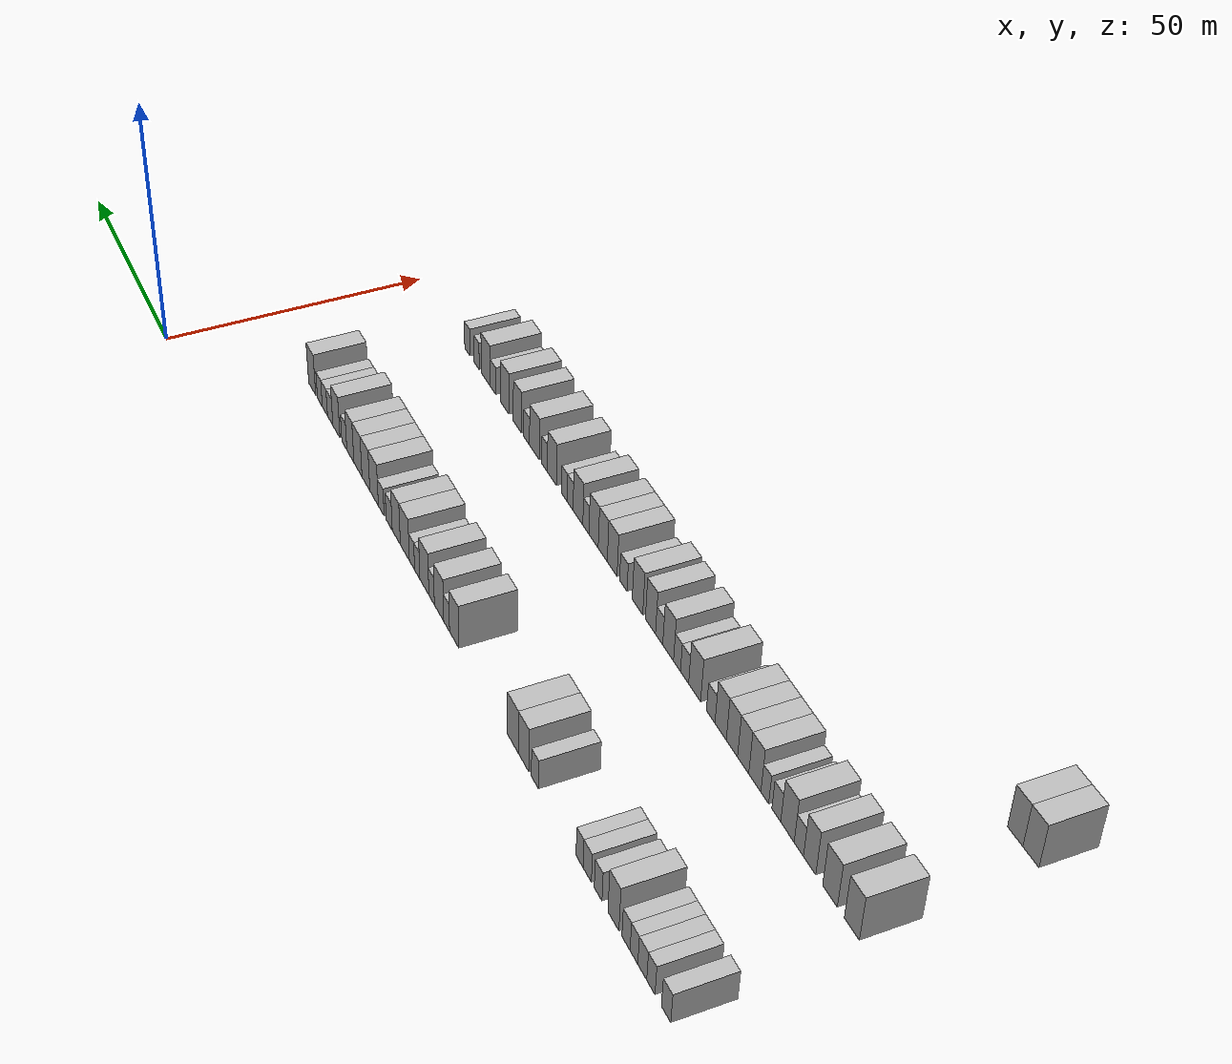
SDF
<sdf version="1.6">
 <world name="default">
  <model name="building_77">
   <static>1</static>
   <pose>25.0000 -171.9462 0 0.000000 0.000000 0.000000</pose>
   <link name="link">
    <pose>0 0 3.00 0 0 0</pose>
    <collision name="collision"><geometry><box><size>10.0000 2.8960 6.0000</size></box></geometry></collision>
    <visual name="visual">
     <cast_shadows>0</cast_shadows>
     <geometry><box><size>10.0000 2.8960 6.0000</size></box></geometry>
     <material>
      <script>
       <uri>model://HANNAS_wall/materials/scripts</uri>
       <uri>model://HANNAS_wall/materials/textures</uri>
       <name>vrc/HANNAS_wall</name>
      </script>
     </material>
    </visual>
   </link>
  </model>
  <model name="building_78">
   <static>1</static>
   <pose>25.0000 -167.1948 0 0.000000 0.000000 0.000000</pose>
   <link name="link">
    <pose>0 0 3.00 0 0 0</pose>
    <collision name="collision"><geometry><box><size>10.0000 2.6068 6.0000</size></box></geometry></collision>
    <visual name="visual">
     <cast_shadows>0</cast_shadows>
     <geometry><box><size>10.0000 2.6068 6.0000</size></box></geometry>
     <material>
      <script>
       <uri>model://HANNAS_wall/materials/scripts</uri>
       <uri>model://HANNAS_wall/materials/textures</uri>
       <name>vrc/HANNAS_wall</name>
      </script>
     </material>
    </visual>
   </link>
  </model>
  <model name="building_79">
   <static>1</static>
   <pose>25.0000 -164.4544 0 0.000000 0.000000 0.000000</pose>
   <link name="link">
    <pose>0 0 3.00 0 0 0</pose>
    <collision name="collision"><geometry><box><size>10.0000 2.8740 6.0000</size></box></geometry></collision>
    <visual name="visual">
     <cast_shadows>0</cast_shadows>
     <geometry><box><size>10.0000 2.8740 6.0000</size></box></geometry>
     <material>
      <script>
       <uri>model://HANNAS_wall/materials/scripts</uri>
       <uri>model://HANNAS_wall/materials/textures</uri>
       <name>vrc/HANNAS_wall</name>
      </script>
     </material>
    </visual>
   </link>
  </model>
  <model name="building_80">
   <static>1</static>
   <pose>25.0000 -161.7639 0 0.000000 0.000000 0.000000</pose>
   <link name="link">
    <pose>0 0 3.00 0 0 0</pose>
    <collision name="collision"><geometry><box><size>10.0000 2.5069 6.0000</size></box></geometry></collision>
    <visual name="visual">
     <cast_shadows>0</cast_shadows>
     <geometry><box><size>10.0000 2.5069 6.0000</size></box></geometry>
     <material>
      <script>
       <uri>model://HANNAS_wall/materials/scripts</uri>
       <uri>model://HANNAS_wall/materials/textures</uri>
       <name>vrc/HANNAS_wall</name>
      </script>
     </material>
    </visual>
   </link>
  </model>
  <model name="building_81">
   <static>1</static>
   <pose>25.0000 -159.1774 0 0.000000 0.000000 0.000000</pose>
   <link name="link">
    <pose>0 0 3.00 0 0 0</pose>
    <collision name="collision"><geometry><box><size>10.0000 2.6662 6.0000</size></box></geometry></collision>
    <visual name="visual">
     <cast_shadows>0</cast_shadows>
     <geometry><box><size>10.0000 2.6662 6.0000</size></box></geometry>
     <material>
      <script>
       <uri>model://HANNAS_wall/materials/scripts</uri>
       <uri>model://HANNAS_wall/materials/textures</uri>
       <name>vrc/HANNAS_wall</name>
      </script>
     </material>
    </visual>
   </link>
  </model>
  <model name="building_82">
   <static>1</static>
   <pose>25.0000 -155.0126 0 0.000000 0.000000 0.000000</pose>
   <link name="link">
    <pose>0 0 4.50 0 0 0</pose>
    <collision name="collision"><geometry><box><size>10.0000 3.6634 9.0000</size></box></geometry></collision>
    <visual name="visual">
     <cast_shadows>0</cast_shadows>
     <geometry><box><size>10.0000 3.6634 9.0000</size></box></geometry>
     <material>
      <script>
       <uri>model://HANNAS_wall/materials/scripts</uri>
       <uri>model://HANNAS_wall/materials/textures</uri>
       <name>vrc/HANNAS_wall</name>
      </script>
     </material>
    </visual>
   </link>
  </model>
  <model name="building_83">
   <static>1</static>
   <pose>25.0000 -149.8587 0 0.000000 0.000000 0.000000</pose>
   <link name="link">
    <pose>0 0 3.00 0 0 0</pose>
    <collision name="collision"><geometry><box><size>10.0000 2.6444 6.0000</size></box></geometry></collision>
    <visual name="visual">
     <cast_shadows>0</cast_shadows>
     <geometry><box><size>10.0000 2.6444 6.0000</size></box></geometry>
     <material>
      <script>
       <uri>model://HANNAS_wall/materials/scripts</uri>
       <uri>model://HANNAS_wall/materials/textures</uri>
       <name>vrc/HANNAS_wall</name>
      </script>
     </material>
    </visual>
   </link>
  </model>
  <model name="building_84">
   <static>1</static>
   <pose>25.0000 -146.0959 0 0.000000 0.000000 0.000000</pose>
   <link name="link">
    <pose>0 0 3.00 0 0 0</pose>
    <collision name="collision"><geometry><box><size>10.0000 2.8811 6.0000</size></box></geometry></collision>
    <visual name="visual">
     <cast_shadows>0</cast_shadows>
     <geometry><box><size>10.0000 2.8811 6.0000</size></box></geometry>
     <material>
      <script>
       <uri>model://HANNAS_wall/materials/scripts</uri>
       <uri>model://HANNAS_wall/materials/textures</uri>
       <name>vrc/HANNAS_wall</name>
      </script>
     </material>
    </visual>
   </link>
  </model>
  <model name="building_85">
   <static>1</static>
   <pose>25.0000 -143.4187 0 0.000000 0.000000 0.000000</pose>
   <link name="link">
    <pose>0 0 3.00 0 0 0</pose>
    <collision name="collision"><geometry><box><size>10.0000 2.4735 6.0000</size></box></geometry></collision>
    <visual name="visual">
     <cast_shadows>0</cast_shadows>
     <geometry><box><size>10.0000 2.4735 6.0000</size></box></geometry>
     <material>
      <script>
       <uri>model://HANNAS_wall/materials/scripts</uri>
       <uri>model://HANNAS_wall/materials/textures</uri>
       <name>vrc/HANNAS_wall</name>
      </script>
     </material>
    </visual>
   </link>
  </model>
  <model name="building_86">
   <static>1</static>
   <pose>25.0000 -127.1393 0 0.000000 0.000000 0.000000</pose>
   <link name="link">
    <pose>0 0 3.00 0 0 0</pose>
    <collision name="collision"><geometry><box><size>10.0000 2.6951 6.0000</size></box></geometry></collision>
    <visual name="visual">
     <cast_shadows>0</cast_shadows>
     <geometry><box><size>10.0000 2.6951 6.0000</size></box></geometry>
     <material>
      <script>
       <uri>model://HANNAS_wall/materials/scripts</uri>
       <uri>model://HANNAS_wall/materials/textures</uri>
       <name>vrc/HANNAS_wall</name>
      </script>
     </material>
    </visual>
   </link>
  </model>
  <model name="building_87">
   <static>1</static>
   <pose>25.0000 -122.7769 0 0.000000 0.000000 0.000000</pose>
   <link name="link">
    <pose>0 0 4.50 0 0 0</pose>
    <collision name="collision"><geometry><box><size>10.0000 4.0297 9.0000</size></box></geometry></collision>
    <visual name="visual">
     <cast_shadows>0</cast_shadows>
     <geometry><box><size>10.0000 4.0297 9.0000</size></box></geometry>
     <material>
      <script>
       <uri>model://HANNAS_wall/materials/scripts</uri>
       <uri>model://HANNAS_wall/materials/textures</uri>
       <name>vrc/HANNAS_wall</name>
      </script>
     </material>
    </visual>
   </link>
  </model>
  <model name="building_88">
   <static>1</static>
   <pose>25.0000 -118.6511 0 0.000000 0.000000 0.000000</pose>
   <link name="link">
    <pose>0 0 4.50 0 0 0</pose>
    <collision name="collision"><geometry><box><size>10.0000 4.2219 9.0000</size></box></geometry></collision>
    <visual name="visual">
     <cast_shadows>0</cast_shadows>
     <geometry><box><size>10.0000 4.2219 9.0000</size></box></geometry>
     <material>
      <script>
       <uri>model://HANNAS_wall/materials/scripts</uri>
       <uri>model://HANNAS_wall/materials/textures</uri>
       <name>vrc/HANNAS_wall</name>
      </script>
     </material>
    </visual>
   </link>
  </model>
  <model name="building_89">
   <static>1</static>
   <pose>25.0000 -94.5242 0 0.000000 0.000000 0.000000</pose>
   <link name="link">
    <pose>0 0 4.50 0 0 0</pose>
    <collision name="collision"><geometry><box><size>10.0000 4.0106 9.0000</size></box></geometry></collision>
    <visual name="visual">
     <cast_shadows>0</cast_shadows>
     <geometry><box><size>10.0000 4.0106 9.0000</size></box></geometry>
     <material>
      <script>
       <uri>model://HANNAS_wall/materials/scripts</uri>
       <uri>model://HANNAS_wall/materials/textures</uri>
       <name>vrc/HANNAS_wall</name>
      </script>
     </material>
    </visual>
   </link>
  </model>
  <model name="building_90">
   <static>1</static>
   <pose>25.0000 -91.2445 0 0.000000 0.000000 0.000000</pose>
   <link name="link">
    <pose>0 0 3.00 0 0 0</pose>
    <collision name="collision"><geometry><box><size>10.0000 2.5489 6.0000</size></box></geometry></collision>
    <visual name="visual">
     <cast_shadows>0</cast_shadows>
     <geometry><box><size>10.0000 2.5489 6.0000</size></box></geometry>
     <material>
      <script>
       <uri>model://HANNAS_wall/materials/scripts</uri>
       <uri>model://HANNAS_wall/materials/textures</uri>
       <name>vrc/HANNAS_wall</name>
      </script>
     </material>
    </visual>
   </link>
  </model>
  <model name="building_91">
   <static>1</static>
   <pose>25.0000 -87.8965 0 0.000000 0.000000 0.000000</pose>
   <link name="link">
    <pose>0 0 4.50 0 0 0</pose>
    <collision name="collision"><geometry><box><size>10.0000 4.1472 9.0000</size></box></geometry></collision>
    <visual name="visual">
     <cast_shadows>0</cast_shadows>
     <geometry><box><size>10.0000 4.1472 9.0000</size></box></geometry>
     <material>
      <script>
       <uri>model://HANNAS_wall/materials/scripts</uri>
       <uri>model://HANNAS_wall/materials/textures</uri>
       <name>vrc/HANNAS_wall</name>
      </script>
     </material>
    </visual>
   </link>
  </model>
  <model name="building_92">
   <static>1</static>
   <pose>25.0000 -84.5938 0 0.000000 0.000000 0.000000</pose>
   <link name="link">
    <pose>0 0 3.00 0 0 0</pose>
    <collision name="collision"><geometry><box><size>10.0000 2.4582 6.0000</size></box></geometry></collision>
    <visual name="visual">
     <cast_shadows>0</cast_shadows>
     <geometry><box><size>10.0000 2.4582 6.0000</size></box></geometry>
     <material>
      <script>
       <uri>model://HANNAS_wall/materials/scripts</uri>
       <uri>model://HANNAS_wall/materials/textures</uri>
       <name>vrc/HANNAS_wall</name>
      </script>
     </material>
    </visual>
   </link>
  </model>
  <model name="building_93">
   <static>1</static>
   <pose>25.0000 -81.3081 0 0.000000 0.000000 0.000000</pose>
   <link name="link">
    <pose>0 0 4.50 0 0 0</pose>
    <collision name="collision"><geometry><box><size>10.0000 4.1131 9.0000</size></box></geometry></collision>
    <visual name="visual">
     <cast_shadows>0</cast_shadows>
     <geometry><box><size>10.0000 4.1131 9.0000</size></box></geometry>
     <material>
      <script>
       <uri>model://HANNAS_wall/materials/scripts</uri>
       <uri>model://HANNAS_wall/materials/textures</uri>
       <name>vrc/HANNAS_wall</name>
      </script>
     </material>
    </visual>
   </link>
  </model>
  <model name="building_94">
   <static>1</static>
   <pose>25.0000 -78.0422 0 0.000000 0.000000 0.000000</pose>
   <link name="link">
    <pose>0 0 3.00 0 0 0</pose>
    <collision name="collision"><geometry><box><size>10.0000 2.4187 6.0000</size></box></geometry></collision>
    <visual name="visual">
     <cast_shadows>0</cast_shadows>
     <geometry><box><size>10.0000 2.4187 6.0000</size></box></geometry>
     <material>
      <script>
       <uri>model://HANNAS_wall/materials/scripts</uri>
       <uri>model://HANNAS_wall/materials/textures</uri>
       <name>vrc/HANNAS_wall</name>
      </script>
     </material>
    </visual>
   </link>
  </model>
  <model name="building_95">
   <static>1</static>
   <pose>25.0000 -75.6158 0 0.000000 0.000000 0.000000</pose>
   <link name="link">
    <pose>0 0 3.00 0 0 0</pose>
    <collision name="collision"><geometry><box><size>10.0000 2.4341 6.0000</size></box></geometry></collision>
    <visual name="visual">
     <cast_shadows>0</cast_shadows>
     <geometry><box><size>10.0000 2.4341 6.0000</size></box></geometry>
     <material>
      <script>
       <uri>model://HANNAS_wall/materials/scripts</uri>
       <uri>model://HANNAS_wall/materials/textures</uri>
       <name>vrc/HANNAS_wall</name>
      </script>
     </material>
    </visual>
   </link>
  </model>
  <model name="building_96">
   <static>1</static>
   <pose>25.0000 -72.2609 0 0.000000 0.000000 0.000000</pose>
   <link name="link">
    <pose>0 0 4.50 0 0 0</pose>
    <collision name="collision"><geometry><box><size>10.0000 4.2758 9.0000</size></box></geometry></collision>
    <visual name="visual">
     <cast_shadows>0</cast_shadows>
     <geometry><box><size>10.0000 4.2758 9.0000</size></box></geometry>
     <material>
      <script>
       <uri>model://HANNAS_wall/materials/scripts</uri>
       <uri>model://HANNAS_wall/materials/textures</uri>
       <name>vrc/HANNAS_wall</name>
      </script>
     </material>
    </visual>
   </link>
  </model>
  <model name="building_97">
   <static>1</static>
   <pose>25.0000 -68.1911 0 0.000000 0.000000 0.000000</pose>
   <link name="link">
    <pose>0 0 4.50 0 0 0</pose>
    <collision name="collision"><geometry><box><size>10.0000 3.8638 9.0000</size></box></geometry></collision>
    <visual name="visual">
     <cast_shadows>0</cast_shadows>
     <geometry><box><size>10.0000 3.8638 9.0000</size></box></geometry>
     <material>
      <script>
       <uri>model://HANNAS_wall/materials/scripts</uri>
       <uri>model://HANNAS_wall/materials/textures</uri>
       <name>vrc/HANNAS_wall</name>
      </script>
     </material>
    </visual>
   </link>
  </model>
  <model name="building_98">
   <static>1</static>
   <pose>25.0000 -64.7932 0 0.000000 0.000000 0.000000</pose>
   <link name="link">
    <pose>0 0 3.00 0 0 0</pose>
    <collision name="collision"><geometry><box><size>10.0000 2.9321 6.0000</size></box></geometry></collision>
    <visual name="visual">
     <cast_shadows>0</cast_shadows>
     <geometry><box><size>10.0000 2.9321 6.0000</size></box></geometry>
     <material>
      <script>
       <uri>model://HANNAS_wall/materials/scripts</uri>
       <uri>model://HANNAS_wall/materials/textures</uri>
       <name>vrc/HANNAS_wall</name>
      </script>
     </material>
    </visual>
   </link>
  </model>
  <model name="building_99">
   <static>1</static>
   <pose>25.0000 -60.9051 0 0.000000 0.000000 0.000000</pose>
   <link name="link">
    <pose>0 0 3.00 0 0 0</pose>
    <collision name="collision"><geometry><box><size>10.0000 2.8439 6.0000</size></box></geometry></collision>
    <visual name="visual">
     <cast_shadows>0</cast_shadows>
     <geometry><box><size>10.0000 2.8439 6.0000</size></box></geometry>
     <material>
      <script>
       <uri>model://HANNAS_wall/materials/scripts</uri>
       <uri>model://HANNAS_wall/materials/textures</uri>
       <name>vrc/HANNAS_wall</name>
      </script>
     </material>
    </visual>
   </link>
  </model>
  <model name="building_100">
   <static>1</static>
   <pose>25.0000 -57.3632 0 0.000000 0.000000 0.000000</pose>
   <link name="link">
    <pose>0 0 4.50 0 0 0</pose>
    <collision name="collision"><geometry><box><size>10.0000 4.2399 9.0000</size></box></geometry></collision>
    <visual name="visual">
     <cast_shadows>0</cast_shadows>
     <geometry><box><size>10.0000 4.2399 9.0000</size></box></geometry>
     <material>
      <script>
       <uri>model://HANNAS_wall/materials/scripts</uri>
       <uri>model://HANNAS_wall/materials/textures</uri>
       <name>vrc/HANNAS_wall</name>
      </script>
     </material>
    </visual>
   </link>
  </model>
  <model name="building_101">
   <static>1</static>
   <pose>25.0000 -53.2477 0 0.000000 0.000000 0.000000</pose>
   <link name="link">
    <pose>0 0 4.50 0 0 0</pose>
    <collision name="collision"><geometry><box><size>10.0000 3.9911 9.0000</size></box></geometry></collision>
    <visual name="visual">
     <cast_shadows>0</cast_shadows>
     <geometry><box><size>10.0000 3.9911 9.0000</size></box></geometry>
     <material>
      <script>
       <uri>model://HANNAS_wall/materials/scripts</uri>
       <uri>model://HANNAS_wall/materials/textures</uri>
       <name>vrc/HANNAS_wall</name>
      </script>
     </material>
    </visual>
   </link>
  </model>
  <model name="building_102">
   <static>1</static>
   <pose>25.0000 -49.1932 0 0.000000 0.000000 0.000000</pose>
   <link name="link">
    <pose>0 0 4.50 0 0 0</pose>
    <collision name="collision"><geometry><box><size>10.0000 4.1179 9.0000</size></box></geometry></collision>
    <visual name="visual">
     <cast_shadows>0</cast_shadows>
     <geometry><box><size>10.0000 4.1179 9.0000</size></box></geometry>
     <material>
      <script>
       <uri>model://HANNAS_wall/materials/scripts</uri>
       <uri>model://HANNAS_wall/materials/textures</uri>
       <name>vrc/HANNAS_wall</name>
      </script>
     </material>
    </visual>
   </link>
  </model>
  <model name="building_103">
   <static>1</static>
   <pose>25.0000 -45.2762 0 0.000000 0.000000 0.000000</pose>
   <link name="link">
    <pose>0 0 4.50 0 0 0</pose>
    <collision name="collision"><geometry><box><size>10.0000 3.7161 9.0000</size></box></geometry></collision>
    <visual name="visual">
     <cast_shadows>0</cast_shadows>
     <geometry><box><size>10.0000 3.7161 9.0000</size></box></geometry>
     <material>
      <script>
       <uri>model://HANNAS_wall/materials/scripts</uri>
       <uri>model://HANNAS_wall/materials/textures</uri>
       <name>vrc/HANNAS_wall</name>
      </script>
     </material>
    </visual>
   </link>
  </model>
  <model name="building_104">
   <static>1</static>
   <pose>25.0000 -42.0873 0 0.000000 0.000000 0.000000</pose>
   <link name="link">
    <pose>0 0 3.00 0 0 0</pose>
    <collision name="collision"><geometry><box><size>10.0000 2.6617 6.0000</size></box></geometry></collision>
    <visual name="visual">
     <cast_shadows>0</cast_shadows>
     <geometry><box><size>10.0000 2.6617 6.0000</size></box></geometry>
     <material>
      <script>
       <uri>model://HANNAS_wall/materials/scripts</uri>
       <uri>model://HANNAS_wall/materials/textures</uri>
       <name>vrc/HANNAS_wall</name>
      </script>
     </material>
    </visual>
   </link>
  </model>
  <model name="building_105">
   <static>1</static>
   <pose>25.0000 -37.8781 0 0.000000 0.000000 0.000000</pose>
   <link name="link">
    <pose>0 0 4.50 0 0 0</pose>
    <collision name="collision"><geometry><box><size>10.0000 3.7567 9.0000</size></box></geometry></collision>
    <visual name="visual">
     <cast_shadows>0</cast_shadows>
     <geometry><box><size>10.0000 3.7567 9.0000</size></box></geometry>
     <material>
      <script>
       <uri>model://HANNAS_wall/materials/scripts</uri>
       <uri>model://HANNAS_wall/materials/textures</uri>
       <name>vrc/HANNAS_wall</name>
      </script>
     </material>
    </visual>
   </link>
  </model>
  <model name="building_106">
   <static>1</static>
   <pose>25.0000 -34.5416 0 0.000000 0.000000 0.000000</pose>
   <link name="link">
    <pose>0 0 3.00 0 0 0</pose>
    <collision name="collision"><geometry><box><size>10.0000 2.9163 6.0000</size></box></geometry></collision>
    <visual name="visual">
     <cast_shadows>0</cast_shadows>
     <geometry><box><size>10.0000 2.9163 6.0000</size></box></geometry>
     <material>
      <script>
       <uri>model://HANNAS_wall/materials/scripts</uri>
       <uri>model://HANNAS_wall/materials/textures</uri>
       <name>vrc/HANNAS_wall</name>
      </script>
     </material>
    </visual>
   </link>
  </model>
  <model name="building_107">
   <static>1</static>
   <pose>25.0000 -31.6365 0 0.000000 0.000000 0.000000</pose>
   <link name="link">
    <pose>0 0 3.00 0 0 0</pose>
    <collision name="collision"><geometry><box><size>10.0000 2.8940 6.0000</size></box></geometry></collision>
    <visual name="visual">
     <cast_shadows>0</cast_shadows>
     <geometry><box><size>10.0000 2.8940 6.0000</size></box></geometry>
     <material>
      <script>
       <uri>model://HANNAS_wall/materials/scripts</uri>
       <uri>model://HANNAS_wall/materials/textures</uri>
       <name>vrc/HANNAS_wall</name>
      </script>
     </material>
    </visual>
   </link>
  </model>
  <model name="building_108">
   <static>1</static>
   <pose>25.0000 -28.8740 0 0.000000 0.000000 0.000000</pose>
   <link name="link">
    <pose>0 0 3.00 0 0 0</pose>
    <collision name="collision"><geometry><box><size>10.0000 2.6311 6.0000</size></box></geometry></collision>
    <visual name="visual">
     <cast_shadows>0</cast_shadows>
     <geometry><box><size>10.0000 2.6311 6.0000</size></box></geometry>
     <material>
      <script>
       <uri>model://HANNAS_wall/materials/scripts</uri>
       <uri>model://HANNAS_wall/materials/textures</uri>
       <name>vrc/HANNAS_wall</name>
      </script>
     </material>
    </visual>
   </link>
  </model>
  <model name="building_109">
   <static>1</static>
   <pose>25.0000 -24.6094 0 0.000000 0.000000 0.000000</pose>
   <link name="link">
    <pose>0 0 4.50 0 0 0</pose>
    <collision name="collision"><geometry><box><size>10.0000 3.8980 9.0000</size></box></geometry></collision>
    <visual name="visual">
     <cast_shadows>0</cast_shadows>
     <geometry><box><size>10.0000 3.8980 9.0000</size></box></geometry>
     <material>
      <script>
       <uri>model://HANNAS_wall/materials/scripts</uri>
       <uri>model://HANNAS_wall/materials/textures</uri>
       <name>vrc/HANNAS_wall</name>
      </script>
     </material>
    </visual>
   </link>
  </model>
  <model name="building_295">
   <static>1</static>
   <pose>55.0000 -168.8632 0 0.000000 0.000000 0.000000</pose>
   <link name="link">
    <pose>0 0 4.50 0 0 0</pose>
    <collision name="collision"><geometry><box><size>10.0000 4.2421 9.0000</size></box></geometry></collision>
    <visual name="visual">
     <cast_shadows>0</cast_shadows>
     <geometry><box><size>10.0000 4.2421 9.0000</size></box></geometry>
     <material>
      <script>
       <uri>model://HANNAS_wall/materials/scripts</uri>
       <uri>model://HANNAS_wall/materials/textures</uri>
       <name>vrc/HANNAS_wall</name>
      </script>
     </material>
    </visual>
   </link>
  </model>
  <model name="building_296">
   <static>1</static>
   <pose>55.0000 -162.6000 0 0.000000 0.000000 0.000000</pose>
   <link name="link">
    <pose>0 0 4.50 0 0 0</pose>
    <collision name="collision"><geometry><box><size>10.0000 4.2843 9.0000</size></box></geometry></collision>
    <visual name="visual">
     <cast_shadows>0</cast_shadows>
     <geometry><box><size>10.0000 4.2843 9.0000</size></box></geometry>
     <material>
      <script>
       <uri>model://HANNAS_wall/materials/scripts</uri>
       <uri>model://HANNAS_wall/materials/textures</uri>
       <name>vrc/HANNAS_wall</name>
      </script>
     </material>
    </visual>
   </link>
  </model>
  <model name="building_297">
   <static>1</static>
   <pose>55.0000 -156.6201 0 0.000000 0.000000 0.000000</pose>
   <link name="link">
    <pose>0 0 4.50 0 0 0</pose>
    <collision name="collision"><geometry><box><size>10.0000 3.6756 9.0000</size></box></geometry></collision>
    <visual name="visual">
     <cast_shadows>0</cast_shadows>
     <geometry><box><size>10.0000 3.6756 9.0000</size></box></geometry>
     <material>
      <script>
       <uri>model://HANNAS_wall/materials/scripts</uri>
       <uri>model://HANNAS_wall/materials/textures</uri>
       <name>vrc/HANNAS_wall</name>
      </script>
     </material>
    </visual>
   </link>
  </model>
  <model name="building_298">
   <static>1</static>
   <pose>55.0000 -153.3808 0 0.000000 0.000000 0.000000</pose>
   <link name="link">
    <pose>0 0 3.00 0 0 0</pose>
    <collision name="collision"><geometry><box><size>10.0000 2.8030 6.0000</size></box></geometry></collision>
    <visual name="visual">
     <cast_shadows>0</cast_shadows>
     <geometry><box><size>10.0000 2.8030 6.0000</size></box></geometry>
     <material>
      <script>
       <uri>model://HANNAS_wall/materials/scripts</uri>
       <uri>model://HANNAS_wall/materials/textures</uri>
       <name>vrc/HANNAS_wall</name>
      </script>
     </material>
    </visual>
   </link>
  </model>
  <model name="building_299">
   <static>1</static>
   <pose>55.0000 -149.9087 0 0.000000 0.000000 0.000000</pose>
   <link name="link">
    <pose>0 0 4.50 0 0 0</pose>
    <collision name="collision"><geometry><box><size>10.0000 4.1413 9.0000</size></box></geometry></collision>
    <visual name="visual">
     <cast_shadows>0</cast_shadows>
     <geometry><box><size>10.0000 4.1413 9.0000</size></box></geometry>
     <material>
      <script>
       <uri>model://HANNAS_wall/materials/scripts</uri>
       <uri>model://HANNAS_wall/materials/textures</uri>
       <name>vrc/HANNAS_wall</name>
      </script>
     </material>
    </visual>
   </link>
  </model>
  <model name="building_300">
   <static>1</static>
   <pose>55.0000 -146.4619 0 0.000000 0.000000 0.000000</pose>
   <link name="link">
    <pose>0 0 3.00 0 0 0</pose>
    <collision name="collision"><geometry><box><size>10.0000 2.7523 6.0000</size></box></geometry></collision>
    <visual name="visual">
     <cast_shadows>0</cast_shadows>
     <geometry><box><size>10.0000 2.7523 6.0000</size></box></geometry>
     <material>
      <script>
       <uri>model://HANNAS_wall/materials/scripts</uri>
       <uri>model://HANNAS_wall/materials/textures</uri>
       <name>vrc/HANNAS_wall</name>
      </script>
     </material>
    </visual>
   </link>
  </model>
  <model name="building_301">
   <static>1</static>
   <pose>55.0000 -142.8486 0 0.000000 0.000000 0.000000</pose>
   <link name="link">
    <pose>0 0 3.00 0 0 0</pose>
    <collision name="collision"><geometry><box><size>10.0000 2.4743 6.0000</size></box></geometry></collision>
    <visual name="visual">
     <cast_shadows>0</cast_shadows>
     <geometry><box><size>10.0000 2.4743 6.0000</size></box></geometry>
     <material>
      <script>
       <uri>model://HANNAS_wall/materials/scripts</uri>
       <uri>model://HANNAS_wall/materials/textures</uri>
       <name>vrc/HANNAS_wall</name>
      </script>
     </material>
    </visual>
   </link>
  </model>
  <model name="building_302">
   <static>1</static>
   <pose>55.0000 -139.6640 0 0.000000 0.000000 0.000000</pose>
   <link name="link">
    <pose>0 0 4.50 0 0 0</pose>
    <collision name="collision"><geometry><box><size>10.0000 3.8949 9.0000</size></box></geometry></collision>
    <visual name="visual">
     <cast_shadows>0</cast_shadows>
     <geometry><box><size>10.0000 3.8949 9.0000</size></box></geometry>
     <material>
      <script>
       <uri>model://HANNAS_wall/materials/scripts</uri>
       <uri>model://HANNAS_wall/materials/textures</uri>
       <name>vrc/HANNAS_wall</name>
      </script>
     </material>
    </visual>
   </link>
  </model>
  <model name="building_303">
   <static>1</static>
   <pose>55.0000 -135.8934 0 0.000000 0.000000 0.000000</pose>
   <link name="link">
    <pose>0 0 4.50 0 0 0</pose>
    <collision name="collision"><geometry><box><size>10.0000 3.6462 9.0000</size></box></geometry></collision>
    <visual name="visual">
     <cast_shadows>0</cast_shadows>
     <geometry><box><size>10.0000 3.6462 9.0000</size></box></geometry>
     <material>
      <script>
       <uri>model://HANNAS_wall/materials/scripts</uri>
       <uri>model://HANNAS_wall/materials/textures</uri>
       <name>vrc/HANNAS_wall</name>
      </script>
     </material>
    </visual>
   </link>
  </model>
  <model name="building_304">
   <static>1</static>
   <pose>55.0000 -132.2071 0 0.000000 0.000000 0.000000</pose>
   <link name="link">
    <pose>0 0 4.50 0 0 0</pose>
    <collision name="collision"><geometry><box><size>10.0000 3.7266 9.0000</size></box></geometry></collision>
    <visual name="visual">
     <cast_shadows>0</cast_shadows>
     <geometry><box><size>10.0000 3.7266 9.0000</size></box></geometry>
     <material>
      <script>
       <uri>model://HANNAS_wall/materials/scripts</uri>
       <uri>model://HANNAS_wall/materials/textures</uri>
       <name>vrc/HANNAS_wall</name>
      </script>
     </material>
    </visual>
   </link>
  </model>
  <model name="building_305">
   <static>1</static>
   <pose>55.0000 -128.4439 0 0.000000 0.000000 0.000000</pose>
   <link name="link">
    <pose>0 0 4.50 0 0 0</pose>
    <collision name="collision"><geometry><box><size>10.0000 3.7998 9.0000</size></box></geometry></collision>
    <visual name="visual">
     <cast_shadows>0</cast_shadows>
     <geometry><box><size>10.0000 3.7998 9.0000</size></box></geometry>
     <material>
      <script>
       <uri>model://HANNAS_wall/materials/scripts</uri>
       <uri>model://HANNAS_wall/materials/textures</uri>
       <name>vrc/HANNAS_wall</name>
      </script>
     </material>
    </visual>
   </link>
  </model>
  <model name="building_306">
   <static>1</static>
   <pose>55.0000 -125.0887 0 0.000000 0.000000 0.000000</pose>
   <link name="link">
    <pose>0 0 3.00 0 0 0</pose>
    <collision name="collision"><geometry><box><size>10.0000 2.9106 6.0000</size></box></geometry></collision>
    <visual name="visual">
     <cast_shadows>0</cast_shadows>
     <geometry><box><size>10.0000 2.9106 6.0000</size></box></geometry>
     <material>
      <script>
       <uri>model://HANNAS_wall/materials/scripts</uri>
       <uri>model://HANNAS_wall/materials/textures</uri>
       <name>vrc/HANNAS_wall</name>
      </script>
     </material>
    </visual>
   </link>
  </model>
  <model name="building_307">
   <static>1</static>
   <pose>55.0000 -119.5408 0 0.000000 0.000000 0.000000</pose>
   <link name="link">
    <pose>0 0 4.50 0 0 0</pose>
    <collision name="collision"><geometry><box><size>10.0000 4.1850 9.0000</size></box></geometry></collision>
    <visual name="visual">
     <cast_shadows>0</cast_shadows>
     <geometry><box><size>10.0000 4.1850 9.0000</size></box></geometry>
     <material>
      <script>
       <uri>model://HANNAS_wall/materials/scripts</uri>
       <uri>model://HANNAS_wall/materials/textures</uri>
       <name>vrc/HANNAS_wall</name>
      </script>
     </material>
    </visual>
   </link>
  </model>
  <model name="building_308">
   <static>1</static>
   <pose>55.0000 -116.0022 0 0.000000 0.000000 0.000000</pose>
   <link name="link">
    <pose>0 0 3.00 0 0 0</pose>
    <collision name="collision"><geometry><box><size>10.0000 2.8924 6.0000</size></box></geometry></collision>
    <visual name="visual">
     <cast_shadows>0</cast_shadows>
     <geometry><box><size>10.0000 2.8924 6.0000</size></box></geometry>
     <material>
      <script>
       <uri>model://HANNAS_wall/materials/scripts</uri>
       <uri>model://HANNAS_wall/materials/textures</uri>
       <name>vrc/HANNAS_wall</name>
      </script>
     </material>
    </visual>
   </link>
  </model>
  <model name="building_309">
   <static>1</static>
   <pose>55.0000 -113.3184 0 0.000000 0.000000 0.000000</pose>
   <link name="link">
    <pose>0 0 3.00 0 0 0</pose>
    <collision name="collision"><geometry><box><size>10.0000 2.4752 6.0000</size></box></geometry></collision>
    <visual name="visual">
     <cast_shadows>0</cast_shadows>
     <geometry><box><size>10.0000 2.4752 6.0000</size></box></geometry>
     <material>
      <script>
       <uri>model://HANNAS_wall/materials/scripts</uri>
       <uri>model://HANNAS_wall/materials/textures</uri>
       <name>vrc/HANNAS_wall</name>
      </script>
     </material>
    </visual>
   </link>
  </model>
  <model name="building_310">
   <static>1</static>
   <pose>55.0000 -110.1278 0 0.000000 0.000000 0.000000</pose>
   <link name="link">
    <pose>0 0 4.50 0 0 0</pose>
    <collision name="collision"><geometry><box><size>10.0000 3.9058 9.0000</size></box></geometry></collision>
    <visual name="visual">
     <cast_shadows>0</cast_shadows>
     <geometry><box><size>10.0000 3.9058 9.0000</size></box></geometry>
     <material>
      <script>
       <uri>model://HANNAS_wall/materials/scripts</uri>
       <uri>model://HANNAS_wall/materials/textures</uri>
       <name>vrc/HANNAS_wall</name>
      </script>
     </material>
    </visual>
   </link>
  </model>
  <model name="building_311">
   <static>1</static>
   <pose>55.0000 -106.8393 0 0.000000 0.000000 0.000000</pose>
   <link name="link">
    <pose>0 0 3.00 0 0 0</pose>
    <collision name="collision"><geometry><box><size>10.0000 2.6712 6.0000</size></box></geometry></collision>
    <visual name="visual">
     <cast_shadows>0</cast_shadows>
     <geometry><box><size>10.0000 2.6712 6.0000</size></box></geometry>
     <material>
      <script>
       <uri>model://HANNAS_wall/materials/scripts</uri>
       <uri>model://HANNAS_wall/materials/textures</uri>
       <name>vrc/HANNAS_wall</name>
      </script>
     </material>
    </visual>
   </link>
  </model>
  <model name="building_312">
   <static>1</static>
   <pose>55.0000 -103.6304 0 0.000000 0.000000 0.000000</pose>
   <link name="link">
    <pose>0 0 4.50 0 0 0</pose>
    <collision name="collision"><geometry><box><size>10.0000 3.7466 9.0000</size></box></geometry></collision>
    <visual name="visual">
     <cast_shadows>0</cast_shadows>
     <geometry><box><size>10.0000 3.7466 9.0000</size></box></geometry>
     <material>
      <script>
       <uri>model://HANNAS_wall/materials/scripts</uri>
       <uri>model://HANNAS_wall/materials/textures</uri>
       <name>vrc/HANNAS_wall</name>
      </script>
     </material>
    </visual>
   </link>
  </model>
  <model name="building_313">
   <static>1</static>
   <pose>55.0000 -98.7608 0 0.000000 0.000000 0.000000</pose>
   <link name="link">
    <pose>0 0 4.50 0 0 0</pose>
    <collision name="collision"><geometry><box><size>10.0000 3.9927 9.0000</size></box></geometry></collision>
    <visual name="visual">
     <cast_shadows>0</cast_shadows>
     <geometry><box><size>10.0000 3.9927 9.0000</size></box></geometry>
     <material>
      <script>
       <uri>model://HANNAS_wall/materials/scripts</uri>
       <uri>model://HANNAS_wall/materials/textures</uri>
       <name>vrc/HANNAS_wall</name>
      </script>
     </material>
    </visual>
   </link>
  </model>
  <model name="building_314">
   <static>1</static>
   <pose>55.0000 -93.3300 0 0.000000 0.000000 0.000000</pose>
   <link name="link">
    <pose>0 0 3.00 0 0 0</pose>
    <collision name="collision"><geometry><box><size>10.0000 2.8690 6.0000</size></box></geometry></collision>
    <visual name="visual">
     <cast_shadows>0</cast_shadows>
     <geometry><box><size>10.0000 2.8690 6.0000</size></box></geometry>
     <material>
      <script>
       <uri>model://HANNAS_wall/materials/scripts</uri>
       <uri>model://HANNAS_wall/materials/textures</uri>
       <name>vrc/HANNAS_wall</name>
      </script>
     </material>
    </visual>
   </link>
  </model>
  <model name="building_315">
   <static>1</static>
   <pose>55.0000 -88.9721 0 0.000000 0.000000 0.000000</pose>
   <link name="link">
    <pose>0 0 4.50 0 0 0</pose>
    <collision name="collision"><geometry><box><size>10.0000 3.8469 9.0000</size></box></geometry></collision>
    <visual name="visual">
     <cast_shadows>0</cast_shadows>
     <geometry><box><size>10.0000 3.8469 9.0000</size></box></geometry>
     <material>
      <script>
       <uri>model://HANNAS_wall/materials/scripts</uri>
       <uri>model://HANNAS_wall/materials/textures</uri>
       <name>vrc/HANNAS_wall</name>
      </script>
     </material>
    </visual>
   </link>
  </model>
  <model name="building_316">
   <static>1</static>
   <pose>55.0000 -85.2303 0 0.000000 0.000000 0.000000</pose>
   <link name="link">
    <pose>0 0 4.50 0 0 0</pose>
    <collision name="collision"><geometry><box><size>10.0000 3.6365 9.0000</size></box></geometry></collision>
    <visual name="visual">
     <cast_shadows>0</cast_shadows>
     <geometry><box><size>10.0000 3.6365 9.0000</size></box></geometry>
     <material>
      <script>
       <uri>model://HANNAS_wall/materials/scripts</uri>
       <uri>model://HANNAS_wall/materials/textures</uri>
       <name>vrc/HANNAS_wall</name>
      </script>
     </material>
    </visual>
   </link>
  </model>
  <model name="building_317">
   <static>1</static>
   <pose>55.0000 -81.5181 0 0.000000 0.000000 0.000000</pose>
   <link name="link">
    <pose>0 0 4.50 0 0 0</pose>
    <collision name="collision"><geometry><box><size>10.0000 3.7880 9.0000</size></box></geometry></collision>
    <visual name="visual">
     <cast_shadows>0</cast_shadows>
     <geometry><box><size>10.0000 3.7880 9.0000</size></box></geometry>
     <material>
      <script>
       <uri>model://HANNAS_wall/materials/scripts</uri>
       <uri>model://HANNAS_wall/materials/textures</uri>
       <name>vrc/HANNAS_wall</name>
      </script>
     </material>
    </visual>
   </link>
  </model>
  <model name="building_318">
   <static>1</static>
   <pose>55.0000 -78.3879 0 0.000000 0.000000 0.000000</pose>
   <link name="link">
    <pose>0 0 3.00 0 0 0</pose>
    <collision name="collision"><geometry><box><size>10.0000 2.4724 6.0000</size></box></geometry></collision>
    <visual name="visual">
     <cast_shadows>0</cast_shadows>
     <geometry><box><size>10.0000 2.4724 6.0000</size></box></geometry>
     <material>
      <script>
       <uri>model://HANNAS_wall/materials/scripts</uri>
       <uri>model://HANNAS_wall/materials/textures</uri>
       <name>vrc/HANNAS_wall</name>
      </script>
     </material>
    </visual>
   </link>
  </model>
  <model name="building_319">
   <static>1</static>
   <pose>55.0000 -75.1137 0 0.000000 0.000000 0.000000</pose>
   <link name="link">
    <pose>0 0 4.50 0 0 0</pose>
    <collision name="collision"><geometry><box><size>10.0000 4.0760 9.0000</size></box></geometry></collision>
    <visual name="visual">
     <cast_shadows>0</cast_shadows>
     <geometry><box><size>10.0000 4.0760 9.0000</size></box></geometry>
     <material>
      <script>
       <uri>model://HANNAS_wall/materials/scripts</uri>
       <uri>model://HANNAS_wall/materials/textures</uri>
       <name>vrc/HANNAS_wall</name>
      </script>
     </material>
    </visual>
   </link>
  </model>
  <model name="building_320">
   <static>1</static>
   <pose>55.0000 -71.8012 0 0.000000 0.000000 0.000000</pose>
   <link name="link">
    <pose>0 0 3.00 0 0 0</pose>
    <collision name="collision"><geometry><box><size>10.0000 2.5491 6.0000</size></box></geometry></collision>
    <visual name="visual">
     <cast_shadows>0</cast_shadows>
     <geometry><box><size>10.0000 2.5491 6.0000</size></box></geometry>
     <material>
      <script>
       <uri>model://HANNAS_wall/materials/scripts</uri>
       <uri>model://HANNAS_wall/materials/textures</uri>
       <name>vrc/HANNAS_wall</name>
      </script>
     </material>
    </visual>
   </link>
  </model>
  <model name="building_321">
   <static>1</static>
   <pose>55.0000 -69.3107 0 0.000000 0.000000 0.000000</pose>
   <link name="link">
    <pose>0 0 3.00 0 0 0</pose>
    <collision name="collision"><geometry><box><size>10.0000 2.4319 6.0000</size></box></geometry></collision>
    <visual name="visual">
     <cast_shadows>0</cast_shadows>
     <geometry><box><size>10.0000 2.4319 6.0000</size></box></geometry>
     <material>
      <script>
       <uri>model://HANNAS_wall/materials/scripts</uri>
       <uri>model://HANNAS_wall/materials/textures</uri>
       <name>vrc/HANNAS_wall</name>
      </script>
     </material>
    </visual>
   </link>
  </model>
  <model name="building_322">
   <static>1</static>
   <pose>55.0000 -64.0914 0 0.000000 0.000000 0.000000</pose>
   <link name="link">
    <pose>0 0 4.50 0 0 0</pose>
    <collision name="collision"><geometry><box><size>10.0000 4.0068 9.0000</size></box></geometry></collision>
    <visual name="visual">
     <cast_shadows>0</cast_shadows>
     <geometry><box><size>10.0000 4.0068 9.0000</size></box></geometry>
     <material>
      <script>
       <uri>model://HANNAS_wall/materials/scripts</uri>
       <uri>model://HANNAS_wall/materials/textures</uri>
       <name>vrc/HANNAS_wall</name>
      </script>
     </material>
    </visual>
   </link>
  </model>
  <model name="building_323">
   <static>1</static>
   <pose>55.0000 -60.8397 0 0.000000 0.000000 0.000000</pose>
   <link name="link">
    <pose>0 0 3.00 0 0 0</pose>
    <collision name="collision"><geometry><box><size>10.0000 2.4966 6.0000</size></box></geometry></collision>
    <visual name="visual">
     <cast_shadows>0</cast_shadows>
     <geometry><box><size>10.0000 2.4966 6.0000</size></box></geometry>
     <material>
      <script>
       <uri>model://HANNAS_wall/materials/scripts</uri>
       <uri>model://HANNAS_wall/materials/textures</uri>
       <name>vrc/HANNAS_wall</name>
      </script>
     </material>
    </visual>
   </link>
  </model>
  <model name="building_324">
   <static>1</static>
   <pose>55.0000 -56.3990 0 0.000000 0.000000 0.000000</pose>
   <link name="link">
    <pose>0 0 4.50 0 0 0</pose>
    <collision name="collision"><geometry><box><size>10.0000 4.3849 9.0000</size></box></geometry></collision>
    <visual name="visual">
     <cast_shadows>0</cast_shadows>
     <geometry><box><size>10.0000 4.3849 9.0000</size></box></geometry>
     <material>
      <script>
       <uri>model://HANNAS_wall/materials/scripts</uri>
       <uri>model://HANNAS_wall/materials/textures</uri>
       <name>vrc/HANNAS_wall</name>
      </script>
     </material>
    </visual>
   </link>
  </model>
  <model name="building_325">
   <static>1</static>
   <pose>55.0000 -52.8853 0 0.000000 0.000000 0.000000</pose>
   <link name="link">
    <pose>0 0 3.00 0 0 0</pose>
    <collision name="collision"><geometry><box><size>10.0000 2.6423 6.0000</size></box></geometry></collision>
    <visual name="visual">
     <cast_shadows>0</cast_shadows>
     <geometry><box><size>10.0000 2.6423 6.0000</size></box></geometry>
     <material>
      <script>
       <uri>model://HANNAS_wall/materials/scripts</uri>
       <uri>model://HANNAS_wall/materials/textures</uri>
       <name>vrc/HANNAS_wall</name>
      </script>
     </material>
    </visual>
   </link>
  </model>
  <model name="building_326">
   <static>1</static>
   <pose>55.0000 -48.7153 0 0.000000 0.000000 0.000000</pose>
   <link name="link">
    <pose>0 0 4.50 0 0 0</pose>
    <collision name="collision"><geometry><box><size>10.0000 3.6978 9.0000</size></box></geometry></collision>
    <visual name="visual">
     <cast_shadows>0</cast_shadows>
     <geometry><box><size>10.0000 3.6978 9.0000</size></box></geometry>
     <material>
      <script>
       <uri>model://HANNAS_wall/materials/scripts</uri>
       <uri>model://HANNAS_wall/materials/textures</uri>
       <name>vrc/HANNAS_wall</name>
      </script>
     </material>
    </visual>
   </link>
  </model>
  <model name="building_327">
   <static>1</static>
   <pose>55.0000 -42.8023 0 0.000000 0.000000 0.000000</pose>
   <link name="link">
    <pose>0 0 4.50 0 0 0</pose>
    <collision name="collision"><geometry><box><size>10.0000 4.1283 9.0000</size></box></geometry></collision>
    <visual name="visual">
     <cast_shadows>0</cast_shadows>
     <geometry><box><size>10.0000 4.1283 9.0000</size></box></geometry>
     <material>
      <script>
       <uri>model://HANNAS_wall/materials/scripts</uri>
       <uri>model://HANNAS_wall/materials/textures</uri>
       <name>vrc/HANNAS_wall</name>
      </script>
     </material>
    </visual>
   </link>
  </model>
  <model name="building_328">
   <static>1</static>
   <pose>55.0000 -37.3790 0 0.000000 0.000000 0.000000</pose>
   <link name="link">
    <pose>0 0 3.00 0 0 0</pose>
    <collision name="collision"><geometry><box><size>10.0000 2.7182 6.0000</size></box></geometry></collision>
    <visual name="visual">
     <cast_shadows>0</cast_shadows>
     <geometry><box><size>10.0000 2.7182 6.0000</size></box></geometry>
     <material>
      <script>
       <uri>model://HANNAS_wall/materials/scripts</uri>
       <uri>model://HANNAS_wall/materials/textures</uri>
       <name>vrc/HANNAS_wall</name>
      </script>
     </material>
    </visual>
   </link>
  </model>
  <model name="building_329">
   <static>1</static>
   <pose>55.0000 -33.8603 0 0.000000 0.000000 0.000000</pose>
   <link name="link">
    <pose>0 0 4.50 0 0 0</pose>
    <collision name="collision"><geometry><box><size>10.0000 4.3192 9.0000</size></box></geometry></collision>
    <visual name="visual">
     <cast_shadows>0</cast_shadows>
     <geometry><box><size>10.0000 4.3192 9.0000</size></box></geometry>
     <material>
      <script>
       <uri>model://HANNAS_wall/materials/scripts</uri>
       <uri>model://HANNAS_wall/materials/textures</uri>
       <name>vrc/HANNAS_wall</name>
      </script>
     </material>
    </visual>
   </link>
  </model>
  <model name="building_330">
   <static>1</static>
   <pose>55.0000 -29.4506 0 0.000000 0.000000 0.000000</pose>
   <link name="link">
    <pose>0 0 3.00 0 0 0</pose>
    <collision name="collision"><geometry><box><size>10.0000 2.5003 6.0000</size></box></geometry></collision>
    <visual name="visual">
     <cast_shadows>0</cast_shadows>
     <geometry><box><size>10.0000 2.5003 6.0000</size></box></geometry>
     <material>
      <script>
       <uri>model://HANNAS_wall/materials/scripts</uri>
       <uri>model://HANNAS_wall/materials/textures</uri>
       <name>vrc/HANNAS_wall</name>
      </script>
     </material>
    </visual>
   </link>
  </model>
  <model name="building_331">
   <static>1</static>
   <pose>55.0000 -24.8950 0 0.000000 0.000000 0.000000</pose>
   <link name="link">
    <pose>0 0 3.00 0 0 0</pose>
    <collision name="collision"><geometry><box><size>10.0000 2.6109 6.0000</size></box></geometry></collision>
    <visual name="visual">
     <cast_shadows>0</cast_shadows>
     <geometry><box><size>10.0000 2.6109 6.0000</size></box></geometry>
     <material>
      <script>
       <uri>model://HANNAS_wall/materials/scripts</uri>
       <uri>model://HANNAS_wall/materials/textures</uri>
       <name>vrc/HANNAS_wall</name>
      </script>
     </material>
    </visual>
   </link>
  </model>
  <model name="building_527">
   <static>1</static>
   <pose>85.0000 -167.3533 0 0.000000 0.000000 0.000000</pose>
   <link name="link">
    <pose>0 0 4.50 0 0 0</pose>
    <collision name="collision"><geometry><box><size>10.0000 4.2112 9.0000</size></box></geometry></collision>
    <visual name="visual">
     <cast_shadows>0</cast_shadows>
     <geometry><box><size>10.0000 4.2112 9.0000</size></box></geometry>
     <material>
      <script>
       <uri>model://HANNAS_wall/materials/scripts</uri>
       <uri>model://HANNAS_wall/materials/textures</uri>
       <name>vrc/HANNAS_wall</name>
      </script>
     </material>
    </visual>
   </link>
  </model>
  <model name="building_528">
   <static>1</static>
   <pose>85.0000 -163.2166 0 0.000000 0.000000 0.000000</pose>
   <link name="link">
    <pose>0 0 4.50 0 0 0</pose>
    <collision name="collision"><geometry><box><size>10.0000 4.0621 9.0000</size></box></geometry></collision>
    <visual name="visual">
     <cast_shadows>0</cast_shadows>
     <geometry><box><size>10.0000 4.0621 9.0000</size></box></geometry>
     <material>
      <script>
       <uri>model://HANNAS_wall/materials/scripts</uri>
       <uri>model://HANNAS_wall/materials/textures</uri>
       <name>vrc/HANNAS_wall</name>
      </script>
     </material>
    </visual>
   </link>
  </model>
 </world>
</sdf>
